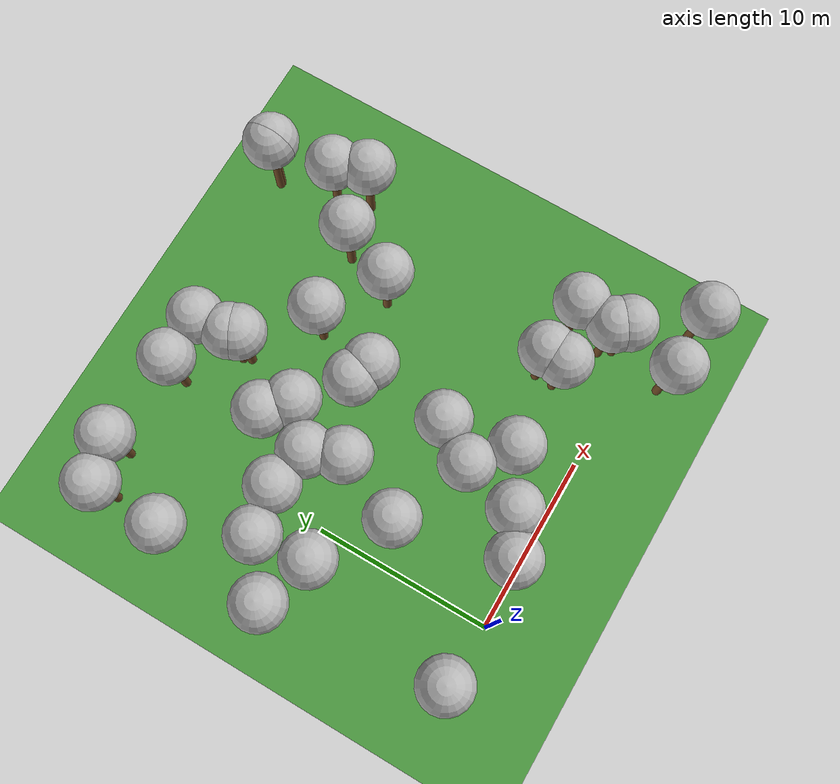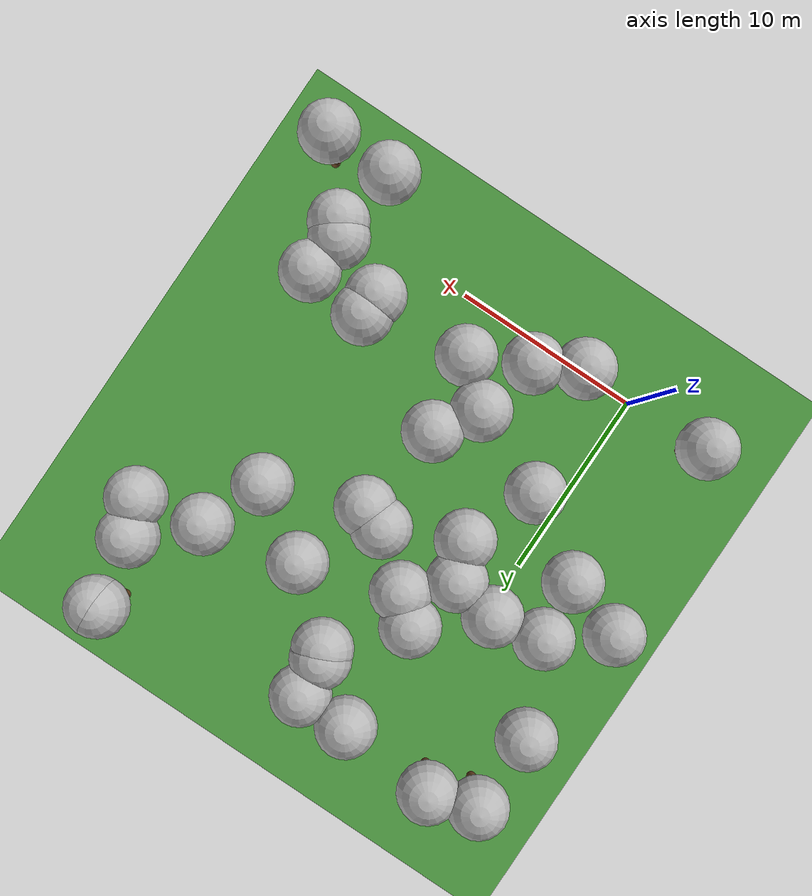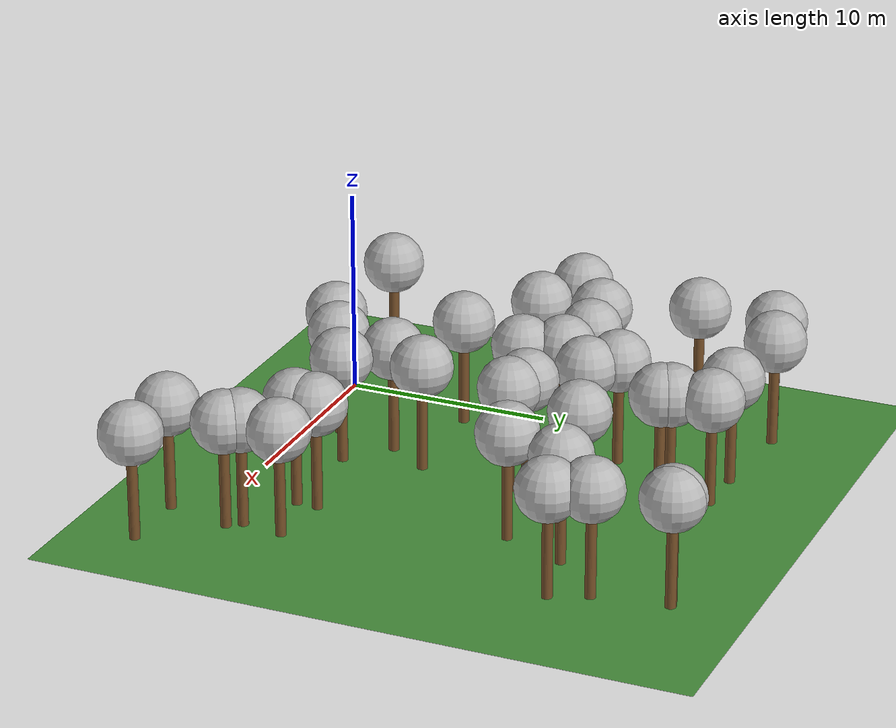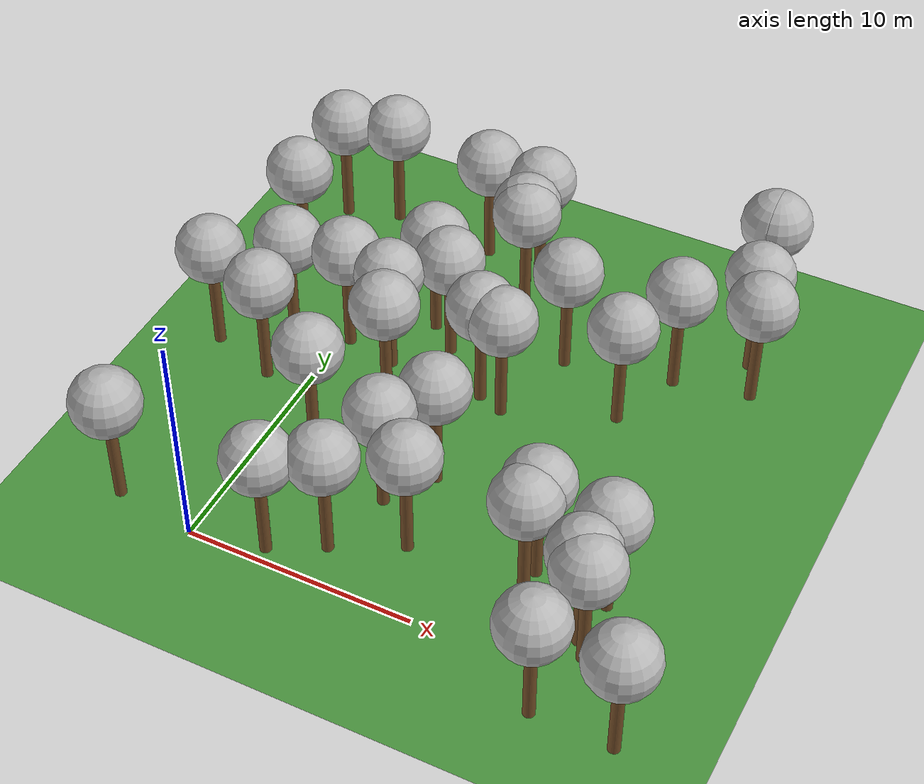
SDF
<sdf version="1.5">
 <world name="default">
  <model name="tree_simple497">
   <static>1</static>
   <link name="link">
    <pose>0 0 0.1 0 -0 0</pose>
    <collision name="collision_trunk">
     <pose>0 0 2 0 -0 0</pose>
     <geometry><cylinder><radius>0.25</radius><length>4</length></cylinder></geometry>
    </collision>
    <collision name="collision_treetop">
     <pose>0 0 5.2 0 -0 0</pose>
     <geometry><sphere><radius>1.5</radius></sphere></geometry>
    </collision>
    <visual name="trunk">
     <pose>0 0 2 0 -0 0</pose>
     <geometry><cylinder><radius>0.25</radius><length>4</length></cylinder></geometry>
     <material>
      <script>
       <uri>model://tree_simple/scripts</uri>
       <uri>model://tree_simple/materials/textures</uri>
       <name>TreeSimple/Trunk</name>
      </script>
     </material>
    </visual>
    <visual name="treetop">
     <pose>0 0 5.2 0 -0 0</pose>
     <geometry><sphere><radius>1.5</radius></sphere></geometry>
     <material>
      <script>
       <uri>model://tree_simple/scripts</uri>
       <uri>model://tree_simple/materials/textures</uri>
       <name>TreeSimple/Treetop</name>
      </script>
     </material>
    </visual>
   </link>
   <pose>16.5730666381 19.0016793819 0 0 -0 0</pose>
  </model>
  <model name="tree_simple495">
   <static>1</static>
   <link name="link">
    <pose>0 0 0.1 0 -0 0</pose>
    <collision name="collision_trunk">
     <pose>0 0 2 0 -0 0</pose>
     <geometry><cylinder><radius>0.25</radius><length>4</length></cylinder></geometry>
    </collision>
    <collision name="collision_treetop">
     <pose>0 0 5.2 0 -0 0</pose>
     <geometry><sphere><radius>1.5</radius></sphere></geometry>
    </collision>
    <visual name="trunk">
     <pose>0 0 2 0 -0 0</pose>
     <geometry><cylinder><radius>0.25</radius><length>4</length></cylinder></geometry>
     <material>
      <script>
       <uri>model://tree_simple/scripts</uri>
       <uri>model://tree_simple/materials/textures</uri>
       <name>TreeSimple/Trunk</name>
      </script>
     </material>
    </visual>
    <visual name="treetop">
     <pose>0 0 5.2 0 -0 0</pose>
     <geometry><sphere><radius>1.5</radius></sphere></geometry>
     <material>
      <script>
       <uri>model://tree_simple/scripts</uri>
       <uri>model://tree_simple/materials/textures</uri>
       <name>TreeSimple/Treetop</name>
      </script>
     </material>
    </visual>
   </link>
   <pose>13.2663357304 3.23501246435 0 0 -0 0</pose>
  </model>
  <model name="tree_simple486">
   <static>1</static>
   <link name="link">
    <pose>0 0 0.1 0 -0 0</pose>
    <collision name="collision_trunk">
     <pose>0 0 2 0 -0 0</pose>
     <geometry><cylinder><radius>0.25</radius><length>4</length></cylinder></geometry>
    </collision>
    <collision name="collision_treetop">
     <pose>0 0 5.2 0 -0 0</pose>
     <geometry><sphere><radius>1.5</radius></sphere></geometry>
    </collision>
    <visual name="trunk">
     <pose>0 0 2 0 -0 0</pose>
     <geometry><cylinder><radius>0.25</radius><length>4</length></cylinder></geometry>
     <material>
      <script>
       <uri>model://tree_simple/scripts</uri>
       <uri>model://tree_simple/materials/textures</uri>
       <name>TreeSimple/Trunk</name>
      </script>
     </material>
    </visual>
    <visual name="treetop">
     <pose>0 0 5.2 0 -0 0</pose>
     <geometry><sphere><radius>1.5</radius></sphere></geometry>
     <material>
      <script>
       <uri>model://tree_simple/scripts</uri>
       <uri>model://tree_simple/materials/textures</uri>
       <name>TreeSimple/Treetop</name>
      </script>
     </material>
    </visual>
   </link>
   <pose>8.18281559396 11.6524151823 0 0 -0 0</pose>
  </model>
  <model name="tree_simple480">
   <static>1</static>
   <link name="link">
    <pose>0 0 0.1 0 -0 0</pose>
    <collision name="collision_trunk">
     <pose>0 0 2 0 -0 0</pose>
     <geometry><cylinder><radius>0.25</radius><length>4</length></cylinder></geometry>
    </collision>
    <collision name="collision_treetop">
     <pose>0 0 5.2 0 -0 0</pose>
     <geometry><sphere><radius>1.5</radius></sphere></geometry>
    </collision>
    <visual name="trunk">
     <pose>0 0 2 0 -0 0</pose>
     <geometry><cylinder><radius>0.25</radius><length>4</length></cylinder></geometry>
     <material>
      <script>
       <uri>model://tree_simple/scripts</uri>
       <uri>model://tree_simple/materials/textures</uri>
       <name>TreeSimple/Trunk</name>
      </script>
     </material>
    </visual>
    <visual name="treetop">
     <pose>0 0 5.2 0 -0 0</pose>
     <geometry><sphere><radius>1.5</radius></sphere></geometry>
     <material>
      <script>
       <uri>model://tree_simple/scripts</uri>
       <uri>model://tree_simple/materials/textures</uri>
       <name>TreeSimple/Treetop</name>
      </script>
     </material>
    </visual>
   </link>
   <pose>-2.16211412072 12.1351070175 0 0 -0 0</pose>
  </model>
  <model name="tree_simple471">
   <static>1</static>
   <link name="link">
    <pose>0 0 0.1 0 -0 0</pose>
    <collision name="collision_trunk">
     <pose>0 0 2 0 -0 0</pose>
     <geometry><cylinder><radius>0.25</radius><length>4</length></cylinder></geometry>
    </collision>
    <collision name="collision_treetop">
     <pose>0 0 5.2 0 -0 0</pose>
     <geometry><sphere><radius>1.5</radius></sphere></geometry>
    </collision>
    <visual name="trunk">
     <pose>0 0 2 0 -0 0</pose>
     <geometry><cylinder><radius>0.25</radius><length>4</length></cylinder></geometry>
     <material>
      <script>
       <uri>model://tree_simple/scripts</uri>
       <uri>model://tree_simple/materials/textures</uri>
       <name>TreeSimple/Trunk</name>
      </script>
     </material>
    </visual>
    <visual name="treetop">
     <pose>0 0 5.2 0 -0 0</pose>
     <geometry><sphere><radius>1.5</radius></sphere></geometry>
     <material>
      <script>
       <uri>model://tree_simple/scripts</uri>
       <uri>model://tree_simple/materials/textures</uri>
       <name>TreeSimple/Treetop</name>
      </script>
     </material>
    </visual>
   </link>
   <pose>-4.10985349052 16.4703272545 0 0 -0 0</pose>
  </model>
  <model name="tree_simple465">
   <static>1</static>
   <link name="link">
    <pose>0 0 0.1 0 -0 0</pose>
    <collision name="collision_trunk">
     <pose>0 0 2 0 -0 0</pose>
     <geometry><cylinder><radius>0.25</radius><length>4</length></cylinder></geometry>
    </collision>
    <collision name="collision_treetop">
     <pose>0 0 5.2 0 -0 0</pose>
     <geometry><sphere><radius>1.5</radius></sphere></geometry>
    </collision>
    <visual name="trunk">
     <pose>0 0 2 0 -0 0</pose>
     <geometry><cylinder><radius>0.25</radius><length>4</length></cylinder></geometry>
     <material>
      <script>
       <uri>model://tree_simple/scripts</uri>
       <uri>model://tree_simple/materials/textures</uri>
       <name>TreeSimple/Trunk</name>
      </script>
     </material>
    </visual>
    <visual name="treetop">
     <pose>0 0 5.2 0 -0 0</pose>
     <geometry><sphere><radius>1.5</radius></sphere></geometry>
     <material>
      <script>
       <uri>model://tree_simple/scripts</uri>
       <uri>model://tree_simple/materials/textures</uri>
       <name>TreeSimple/Treetop</name>
      </script>
     </material>
    </visual>
   </link>
   <pose>5.78708546562 20.6382949275 0 0 -0 0</pose>
  </model>
  <model name="tree_simple450">
   <static>1</static>
   <link name="link">
    <pose>0 0 0.1 0 -0 0</pose>
    <collision name="collision_trunk">
     <pose>0 0 2 0 -0 0</pose>
     <geometry><cylinder><radius>0.25</radius><length>4</length></cylinder></geometry>
    </collision>
    <collision name="collision_treetop">
     <pose>0 0 5.2 0 -0 0</pose>
     <geometry><sphere><radius>1.5</radius></sphere></geometry>
    </collision>
    <visual name="trunk">
     <pose>0 0 2 0 -0 0</pose>
     <geometry><cylinder><radius>0.25</radius><length>4</length></cylinder></geometry>
     <material>
      <script>
       <uri>model://tree_simple/scripts</uri>
       <uri>model://tree_simple/materials/textures</uri>
       <name>TreeSimple/Trunk</name>
      </script>
     </material>
    </visual>
    <visual name="treetop">
     <pose>0 0 5.2 0 -0 0</pose>
     <geometry><sphere><radius>1.5</radius></sphere></geometry>
     <material>
      <script>
       <uri>model://tree_simple/scripts</uri>
       <uri>model://tree_simple/materials/textures</uri>
       <name>TreeSimple/Treetop</name>
      </script>
     </material>
    </visual>
   </link>
   <pose>16.0273432372 22.5148519884 0 0 -0 0</pose>
  </model>
  <model name="tree_simple442">
   <static>1</static>
   <link name="link">
    <pose>0 0 0.1 0 -0 0</pose>
    <collision name="collision_trunk">
     <pose>0 0 2 0 -0 0</pose>
     <geometry><cylinder><radius>0.25</radius><length>4</length></cylinder></geometry>
    </collision>
    <collision name="collision_treetop">
     <pose>0 0 5.2 0 -0 0</pose>
     <geometry><sphere><radius>1.5</radius></sphere></geometry>
    </collision>
    <visual name="trunk">
     <pose>0 0 2 0 -0 0</pose>
     <geometry><cylinder><radius>0.25</radius><length>4</length></cylinder></geometry>
     <material>
      <script>
       <uri>model://tree_simple/scripts</uri>
       <uri>model://tree_simple/materials/textures</uri>
       <name>TreeSimple/Trunk</name>
      </script>
     </material>
    </visual>
    <visual name="treetop">
     <pose>0 0 5.2 0 -0 0</pose>
     <geometry><sphere><radius>1.5</radius></sphere></geometry>
     <material>
      <script>
       <uri>model://tree_simple/scripts</uri>
       <uri>model://tree_simple/materials/textures</uri>
       <name>TreeSimple/Treetop</name>
      </script>
     </material>
    </visual>
   </link>
   <pose>-1.68249170611 21.1094247696 0 0 -0 0</pose>
  </model>
  <model name="tree_simple421">
   <static>1</static>
   <link name="link">
    <pose>0 0 0.1 0 -0 0</pose>
    <collision name="collision_trunk">
     <pose>0 0 2 0 -0 0</pose>
     <geometry><cylinder><radius>0.25</radius><length>4</length></cylinder></geometry>
    </collision>
    <collision name="collision_treetop">
     <pose>0 0 5.2 0 -0 0</pose>
     <geometry><sphere><radius>1.5</radius></sphere></geometry>
    </collision>
    <visual name="trunk">
     <pose>0 0 2 0 -0 0</pose>
     <geometry><cylinder><radius>0.25</radius><length>4</length></cylinder></geometry>
     <material>
      <script>
       <uri>model://tree_simple/scripts</uri>
       <uri>model://tree_simple/materials/textures</uri>
       <name>TreeSimple/Trunk</name>
      </script>
     </material>
    </visual>
    <visual name="treetop">
     <pose>0 0 5.2 0 -0 0</pose>
     <geometry><sphere><radius>1.5</radius></sphere></geometry>
     <material>
      <script>
       <uri>model://tree_simple/scripts</uri>
       <uri>model://tree_simple/materials/textures</uri>
       <name>TreeSimple/Treetop</name>
      </script>
     </material>
    </visual>
   </link>
   <pose>7.02492588621 12.0559728025 0 0 -0 0</pose>
  </model>
  <model name="tree_simple417">
   <static>1</static>
   <link name="link">
    <pose>0 0 0.1 0 -0 0</pose>
    <collision name="collision_trunk">
     <pose>0 0 2 0 -0 0</pose>
     <geometry><cylinder><radius>0.25</radius><length>4</length></cylinder></geometry>
    </collision>
    <collision name="collision_treetop">
     <pose>0 0 5.2 0 -0 0</pose>
     <geometry><sphere><radius>1.5</radius></sphere></geometry>
    </collision>
    <visual name="trunk">
     <pose>0 0 2 0 -0 0</pose>
     <geometry><cylinder><radius>0.25</radius><length>4</length></cylinder></geometry>
     <material>
      <script>
       <uri>model://tree_simple/scripts</uri>
       <uri>model://tree_simple/materials/textures</uri>
       <name>TreeSimple/Trunk</name>
      </script>
     </material>
    </visual>
    <visual name="treetop">
     <pose>0 0 5.2 0 -0 0</pose>
     <geometry><sphere><radius>1.5</radius></sphere></geometry>
     <material>
      <script>
       <uri>model://tree_simple/scripts</uri>
       <uri>model://tree_simple/materials/textures</uri>
       <name>TreeSimple/Treetop</name>
      </script>
     </material>
    </visual>
   </link>
   <pose>-1.82310579314 9.17527441854 0 0 -0 0</pose>
  </model>
  <model name="tree_simple412">
   <static>1</static>
   <link name="link">
    <pose>0 0 0.1 0 -0 0</pose>
    <collision name="collision_trunk">
     <pose>0 0 2 0 -0 0</pose>
     <geometry><cylinder><radius>0.25</radius><length>4</length></cylinder></geometry>
    </collision>
    <collision name="collision_treetop">
     <pose>0 0 5.2 0 -0 0</pose>
     <geometry><sphere><radius>1.5</radius></sphere></geometry>
    </collision>
    <visual name="trunk">
     <pose>0 0 2 0 -0 0</pose>
     <geometry><cylinder><radius>0.25</radius><length>4</length></cylinder></geometry>
     <material>
      <script>
       <uri>model://tree_simple/scripts</uri>
       <uri>model://tree_simple/materials/textures</uri>
       <name>TreeSimple/Trunk</name>
      </script>
     </material>
    </visual>
    <visual name="treetop">
     <pose>0 0 5.2 0 -0 0</pose>
     <geometry><sphere><radius>1.5</radius></sphere></geometry>
     <material>
      <script>
       <uri>model://tree_simple/scripts</uri>
       <uri>model://tree_simple/materials/textures</uri>
       <name>TreeSimple/Treetop</name>
      </script>
     </material>
    </visual>
   </link>
   <pose>1.94235434688 6.68973059551 0 0 -0 0</pose>
  </model>
  <model name="tree_simple376">
   <static>1</static>
   <link name="link">
    <pose>0 0 0.1 0 -0 0</pose>
    <collision name="collision_trunk">
     <pose>0 0 2 0 -0 0</pose>
     <geometry><cylinder><radius>0.25</radius><length>4</length></cylinder></geometry>
    </collision>
    <collision name="collision_treetop">
     <pose>0 0 5.2 0 -0 0</pose>
     <geometry><sphere><radius>1.5</radius></sphere></geometry>
    </collision>
    <visual name="trunk">
     <pose>0 0 2 0 -0 0</pose>
     <geometry><cylinder><radius>0.25</radius><length>4</length></cylinder></geometry>
     <material>
      <script>
       <uri>model://tree_simple/scripts</uri>
       <uri>model://tree_simple/materials/textures</uri>
       <name>TreeSimple/Trunk</name>
      </script>
     </material>
    </visual>
    <visual name="treetop">
     <pose>0 0 5.2 0 -0 0</pose>
     <geometry><sphere><radius>1.5</radius></sphere></geometry>
     <material>
      <script>
       <uri>model://tree_simple/scripts</uri>
       <uri>model://tree_simple/materials/textures</uri>
       <name>TreeSimple/Treetop</name>
      </script>
     </material>
    </visual>
   </link>
   <pose>-3.57495660346 0.511559407044 0 0 -0 0</pose>
  </model>
  <model name="tree_simple350">
   <static>1</static>
   <link name="link">
    <pose>0 0 0.1 0 -0 0</pose>
    <collision name="collision_trunk">
     <pose>0 0 2 0 -0 0</pose>
     <geometry><cylinder><radius>0.25</radius><length>4</length></cylinder></geometry>
    </collision>
    <collision name="collision_treetop">
     <pose>0 0 5.2 0 -0 0</pose>
     <geometry><sphere><radius>1.5</radius></sphere></geometry>
    </collision>
    <visual name="trunk">
     <pose>0 0 2 0 -0 0</pose>
     <geometry><cylinder><radius>0.25</radius><length>4</length></cylinder></geometry>
     <material>
      <script>
       <uri>model://tree_simple/scripts</uri>
       <uri>model://tree_simple/materials/textures</uri>
       <name>TreeSimple/Trunk</name>
      </script>
     </material>
    </visual>
    <visual name="treetop">
     <pose>0 0 5.2 0 -0 0</pose>
     <geometry><sphere><radius>1.5</radius></sphere></geometry>
     <material>
      <script>
       <uri>model://tree_simple/scripts</uri>
       <uri>model://tree_simple/materials/textures</uri>
       <name>TreeSimple/Treetop</name>
      </script>
     </material>
    </visual>
   </link>
   <pose>5.40258361507 1.7380066323 0 0 -0 0</pose>
  </model>
  <model name="tree_simple346">
   <static>1</static>
   <link name="link">
    <pose>0 0 0.1 0 -0 0</pose>
    <collision name="collision_trunk">
     <pose>0 0 2 0 -0 0</pose>
     <geometry><cylinder><radius>0.25</radius><length>4</length></cylinder></geometry>
    </collision>
    <collision name="collision_treetop">
     <pose>0 0 5.2 0 -0 0</pose>
     <geometry><sphere><radius>1.5</radius></sphere></geometry>
    </collision>
    <visual name="trunk">
     <pose>0 0 2 0 -0 0</pose>
     <geometry><cylinder><radius>0.25</radius><length>4</length></cylinder></geometry>
     <material>
      <script>
       <uri>model://tree_simple/scripts</uri>
       <uri>model://tree_simple/materials/textures</uri>
       <name>TreeSimple/Trunk</name>
      </script>
     </material>
    </visual>
    <visual name="treetop">
     <pose>0 0 5.2 0 -0 0</pose>
     <geometry><sphere><radius>1.5</radius></sphere></geometry>
     <material>
      <script>
       <uri>model://tree_simple/scripts</uri>
       <uri>model://tree_simple/materials/textures</uri>
       <name>TreeSimple/Treetop</name>
      </script>
     </material>
    </visual>
   </link>
   <pose>6.18558583868 4.91340003373 0 0 -0 0</pose>
  </model>
  <model name="tree_simple324">
   <static>1</static>
   <link name="link">
    <pose>0 0 0.1 0 -0 0</pose>
    <collision name="collision_trunk">
     <pose>0 0 2 0 -0 0</pose>
     <geometry><cylinder><radius>0.25</radius><length>4</length></cylinder></geometry>
    </collision>
    <collision name="collision_treetop">
     <pose>0 0 5.2 0 -0 0</pose>
     <geometry><sphere><radius>1.5</radius></sphere></geometry>
    </collision>
    <visual name="trunk">
     <pose>0 0 2 0 -0 0</pose>
     <geometry><cylinder><radius>0.25</radius><length>4</length></cylinder></geometry>
     <material>
      <script>
       <uri>model://tree_simple/scripts</uri>
       <uri>model://tree_simple/materials/textures</uri>
       <name>TreeSimple/Trunk</name>
      </script>
     </material>
    </visual>
    <visual name="treetop">
     <pose>0 0 5.2 0 -0 0</pose>
     <geometry><sphere><radius>1.5</radius></sphere></geometry>
     <material>
      <script>
       <uri>model://tree_simple/scripts</uri>
       <uri>model://tree_simple/materials/textures</uri>
       <name>TreeSimple/Treetop</name>
      </script>
     </material>
    </visual>
   </link>
   <pose>2.67974288493 12.1656578915 0 0 -0 0</pose>
  </model>
  <model name="tree_simple316">
   <static>1</static>
   <link name="link">
    <pose>0 0 0.1 0 -0 0</pose>
    <collision name="collision_trunk">
     <pose>0 0 2 0 -0 0</pose>
     <geometry><cylinder><radius>0.25</radius><length>4</length></cylinder></geometry>
    </collision>
    <collision name="collision_treetop">
     <pose>0 0 5.2 0 -0 0</pose>
     <geometry><sphere><radius>1.5</radius></sphere></geometry>
    </collision>
    <visual name="trunk">
     <pose>0 0 2 0 -0 0</pose>
     <geometry><cylinder><radius>0.25</radius><length>4</length></cylinder></geometry>
     <material>
      <script>
       <uri>model://tree_simple/scripts</uri>
       <uri>model://tree_simple/materials/textures</uri>
       <name>TreeSimple/Trunk</name>
      </script>
     </material>
    </visual>
    <visual name="treetop">
     <pose>0 0 5.2 0 -0 0</pose>
     <geometry><sphere><radius>1.5</radius></sphere></geometry>
     <material>
      <script>
       <uri>model://tree_simple/scripts</uri>
       <uri>model://tree_simple/materials/textures</uri>
       <name>TreeSimple/Treetop</name>
      </script>
     </material>
    </visual>
   </link>
   <pose>19.3529599153 -1.91242662106 0 0 -0 0</pose>
  </model>
  <model name="tree_simple314">
   <static>1</static>
   <link name="link">
    <pose>0 0 0.1 0 -0 0</pose>
    <collision name="collision_trunk">
     <pose>0 0 2 0 -0 0</pose>
     <geometry><cylinder><radius>0.25</radius><length>4</length></cylinder></geometry>
    </collision>
    <collision name="collision_treetop">
     <pose>0 0 5.2 0 -0 0</pose>
     <geometry><sphere><radius>1.5</radius></sphere></geometry>
    </collision>
    <visual name="trunk">
     <pose>0 0 2 0 -0 0</pose>
     <geometry><cylinder><radius>0.25</radius><length>4</length></cylinder></geometry>
     <material>
      <script>
       <uri>model://tree_simple/scripts</uri>
       <uri>model://tree_simple/materials/textures</uri>
       <name>TreeSimple/Trunk</name>
      </script>
     </material>
    </visual>
    <visual name="treetop">
     <pose>0 0 5.2 0 -0 0</pose>
     <geometry><sphere><radius>1.5</radius></sphere></geometry>
     <material>
      <script>
       <uri>model://tree_simple/scripts</uri>
       <uri>model://tree_simple/materials/textures</uri>
       <name>TreeSimple/Treetop</name>
      </script>
     </material>
    </visual>
   </link>
   <pose>15.9305866253 -1.88175491407 0 0 -0 0</pose>
  </model>
  <model name="tree_simple308">
   <static>1</static>
   <link name="link">
    <pose>0 0 0.1 0 -0 0</pose>
    <collision name="collision_trunk">
     <pose>0 0 2 0 -0 0</pose>
     <geometry><cylinder><radius>0.25</radius><length>4</length></cylinder></geometry>
    </collision>
    <collision name="collision_treetop">
     <pose>0 0 5.2 0 -0 0</pose>
     <geometry><sphere><radius>1.5</radius></sphere></geometry>
    </collision>
    <visual name="trunk">
     <pose>0 0 2 0 -0 0</pose>
     <geometry><cylinder><radius>0.25</radius><length>4</length></cylinder></geometry>
     <material>
      <script>
       <uri>model://tree_simple/scripts</uri>
       <uri>model://tree_simple/materials/textures</uri>
       <name>TreeSimple/Trunk</name>
      </script>
     </material>
    </visual>
    <visual name="treetop">
     <pose>0 0 5.2 0 -0 0</pose>
     <geometry><sphere><radius>1.5</radius></sphere></geometry>
     <material>
      <script>
       <uri>model://tree_simple/scripts</uri>
       <uri>model://tree_simple/materials/textures</uri>
       <name>TreeSimple/Treetop</name>
      </script>
     </material>
    </visual>
   </link>
   <pose>3.23733276298 0.582978933188 0 0 -0 0</pose>
  </model>
  <model name="tree_simple304">
   <static>1</static>
   <link name="link">
    <pose>0 0 0.1 0 -0 0</pose>
    <collision name="collision_trunk">
     <pose>0 0 2 0 -0 0</pose>
     <geometry><cylinder><radius>0.25</radius><length>4</length></cylinder></geometry>
    </collision>
    <collision name="collision_treetop">
     <pose>0 0 5.2 0 -0 0</pose>
     <geometry><sphere><radius>1.5</radius></sphere></geometry>
    </collision>
    <visual name="trunk">
     <pose>0 0 2 0 -0 0</pose>
     <geometry><cylinder><radius>0.25</radius><length>4</length></cylinder></geometry>
     <material>
      <script>
       <uri>model://tree_simple/scripts</uri>
       <uri>model://tree_simple/materials/textures</uri>
       <name>TreeSimple/Trunk</name>
      </script>
     </material>
    </visual>
    <visual name="treetop">
     <pose>0 0 5.2 0 -0 0</pose>
     <geometry><sphere><radius>1.5</radius></sphere></geometry>
     <material>
      <script>
       <uri>model://tree_simple/scripts</uri>
       <uri>model://tree_simple/materials/textures</uri>
       <name>TreeSimple/Treetop</name>
      </script>
     </material>
    </visual>
   </link>
   <pose>12.7492321523 13.4736505169 0 0 -0 0</pose>
  </model>
  <model name="tree_simple269">
   <static>1</static>
   <link name="link">
    <pose>0 0 0.1 0 -0 0</pose>
    <collision name="collision_trunk">
     <pose>0 0 2 0 -0 0</pose>
     <geometry><cylinder><radius>0.25</radius><length>4</length></cylinder></geometry>
    </collision>
    <collision name="collision_treetop">
     <pose>0 0 5.2 0 -0 0</pose>
     <geometry><sphere><radius>1.5</radius></sphere></geometry>
    </collision>
    <visual name="trunk">
     <pose>0 0 2 0 -0 0</pose>
     <geometry><cylinder><radius>0.25</radius><length>4</length></cylinder></geometry>
     <material>
      <script>
       <uri>model://tree_simple/scripts</uri>
       <uri>model://tree_simple/materials/textures</uri>
       <name>TreeSimple/Trunk</name>
      </script>
     </material>
    </visual>
    <visual name="treetop">
     <pose>0 0 5.2 0 -0 0</pose>
     <geometry><sphere><radius>1.5</radius></sphere></geometry>
     <material>
      <script>
       <uri>model://tree_simple/scripts</uri>
       <uri>model://tree_simple/materials/textures</uri>
       <name>TreeSimple/Treetop</name>
      </script>
     </material>
    </visual>
   </link>
   <pose>3.4316618278 10.3418603378 0 0 -0 0</pose>
  </model>
  <model name="tree_simple246">
   <static>1</static>
   <link name="link">
    <pose>0 0 0.1 0 -0 0</pose>
    <collision name="collision_trunk">
     <pose>0 0 2 0 -0 0</pose>
     <geometry><cylinder><radius>0.25</radius><length>4</length></cylinder></geometry>
    </collision>
    <collision name="collision_treetop">
     <pose>0 0 5.2 0 -0 0</pose>
     <geometry><sphere><radius>1.5</radius></sphere></geometry>
    </collision>
    <visual name="trunk">
     <pose>0 0 2 0 -0 0</pose>
     <geometry><cylinder><radius>0.25</radius><length>4</length></cylinder></geometry>
     <material>
      <script>
       <uri>model://tree_simple/scripts</uri>
       <uri>model://tree_simple/materials/textures</uri>
       <name>TreeSimple/Trunk</name>
      </script>
     </material>
    </visual>
    <visual name="treetop">
     <pose>0 0 5.2 0 -0 0</pose>
     <geometry><sphere><radius>1.5</radius></sphere></geometry>
     <material>
      <script>
       <uri>model://tree_simple/scripts</uri>
       <uri>model://tree_simple/materials/textures</uri>
       <name>TreeSimple/Treetop</name>
      </script>
     </material>
    </visual>
   </link>
   <pose>4.59531277399 14.0377896265 0 0 -0 0</pose>
  </model>
  <model name="tree_simple214">
   <static>1</static>
   <link name="link">
    <pose>0 0 0.1 0 -0 0</pose>
    <collision name="collision_trunk">
     <pose>0 0 2 0 -0 0</pose>
     <geometry><cylinder><radius>0.25</radius><length>4</length></cylinder></geometry>
    </collision>
    <collision name="collision_treetop">
     <pose>0 0 5.2 0 -0 0</pose>
     <geometry><sphere><radius>1.5</radius></sphere></geometry>
    </collision>
    <visual name="trunk">
     <pose>0 0 2 0 -0 0</pose>
     <geometry><cylinder><radius>0.25</radius><length>4</length></cylinder></geometry>
     <material>
      <script>
       <uri>model://tree_simple/scripts</uri>
       <uri>model://tree_simple/materials/textures</uri>
       <name>TreeSimple/Trunk</name>
      </script>
     </material>
    </visual>
    <visual name="treetop">
     <pose>0 0 5.2 0 -0 0</pose>
     <geometry><sphere><radius>1.5</radius></sphere></geometry>
     <material>
      <script>
       <uri>model://tree_simple/scripts</uri>
       <uri>model://tree_simple/materials/textures</uri>
       <name>TreeSimple/Treetop</name>
      </script>
     </material>
    </visual>
   </link>
   <pose>16.4618787814 3.98227082292 0 0 -0 0</pose>
  </model>
  <model name="tree_simple177">
   <static>1</static>
   <link name="link">
    <pose>0 0 0.1 0 -0 0</pose>
    <collision name="collision_trunk">
     <pose>0 0 2 0 -0 0</pose>
     <geometry><cylinder><radius>0.25</radius><length>4</length></cylinder></geometry>
    </collision>
    <collision name="collision_treetop">
     <pose>0 0 5.2 0 -0 0</pose>
     <geometry><sphere><radius>1.5</radius></sphere></geometry>
    </collision>
    <visual name="trunk">
     <pose>0 0 2 0 -0 0</pose>
     <geometry><cylinder><radius>0.25</radius><length>4</length></cylinder></geometry>
     <material>
      <script>
       <uri>model://tree_simple/scripts</uri>
       <uri>model://tree_simple/materials/textures</uri>
       <name>TreeSimple/Trunk</name>
      </script>
     </material>
    </visual>
    <visual name="treetop">
     <pose>0 0 5.2 0 -0 0</pose>
     <geometry><sphere><radius>1.5</radius></sphere></geometry>
     <material>
      <script>
       <uri>model://tree_simple/scripts</uri>
       <uri>model://tree_simple/materials/textures</uri>
       <name>TreeSimple/Treetop</name>
      </script>
     </material>
    </visual>
   </link>
   <pose>5.95472873547 18.7195439191 0 0 -0 0</pose>
  </model>
  <model name="tree_simple160">
   <static>1</static>
   <link name="link">
    <pose>0 0 0.1 0 -0 0</pose>
    <collision name="collision_trunk">
     <pose>0 0 2 0 -0 0</pose>
     <geometry><cylinder><radius>0.25</radius><length>4</length></cylinder></geometry>
    </collision>
    <collision name="collision_treetop">
     <pose>0 0 5.2 0 -0 0</pose>
     <geometry><sphere><radius>1.5</radius></sphere></geometry>
    </collision>
    <visual name="trunk">
     <pose>0 0 2 0 -0 0</pose>
     <geometry><cylinder><radius>0.25</radius><length>4</length></cylinder></geometry>
     <material>
      <script>
       <uri>model://tree_simple/scripts</uri>
       <uri>model://tree_simple/materials/textures</uri>
       <name>TreeSimple/Trunk</name>
      </script>
     </material>
    </visual>
    <visual name="treetop">
     <pose>0 0 5.2 0 -0 0</pose>
     <geometry><sphere><radius>1.5</radius></sphere></geometry>
     <material>
      <script>
       <uri>model://tree_simple/scripts</uri>
       <uri>model://tree_simple/materials/textures</uri>
       <name>TreeSimple/Treetop</name>
      </script>
     </material>
    </visual>
   </link>
   <pose>3.31258380175 15.1525774981 0 0 -0 0</pose>
  </model>
  <model name="tree_simple145">
   <static>1</static>
   <link name="link">
    <pose>0 0 0.1 0 -0 0</pose>
    <collision name="collision_trunk">
     <pose>0 0 2 0 -0 0</pose>
     <geometry><cylinder><radius>0.25</radius><length>4</length></cylinder></geometry>
    </collision>
    <collision name="collision_treetop">
     <pose>0 0 5.2 0 -0 0</pose>
     <geometry><sphere><radius>1.5</radius></sphere></geometry>
    </collision>
    <visual name="trunk">
     <pose>0 0 2 0 -0 0</pose>
     <geometry><cylinder><radius>0.25</radius><length>4</length></cylinder></geometry>
     <material>
      <script>
       <uri>model://tree_simple/scripts</uri>
       <uri>model://tree_simple/materials/textures</uri>
       <name>TreeSimple/Trunk</name>
      </script>
     </material>
    </visual>
    <visual name="treetop">
     <pose>0 0 5.2 0 -0 0</pose>
     <geometry><sphere><radius>1.5</radius></sphere></geometry>
     <material>
      <script>
       <uri>model://tree_simple/scripts</uri>
       <uri>model://tree_simple/materials/textures</uri>
       <name>TreeSimple/Treetop</name>
      </script>
     </material>
    </visual>
   </link>
   <pose>7.53257093085 6.9864658102 0 0 -0 0</pose>
  </model>
  <model name="tree_simple130">
   <static>1</static>
   <link name="link">
    <pose>0 0 0.1 0 -0 0</pose>
    <collision name="collision_trunk">
     <pose>0 0 2 0 -0 0</pose>
     <geometry><cylinder><radius>0.25</radius><length>4</length></cylinder></geometry>
    </collision>
    <collision name="collision_treetop">
     <pose>0 0 5.2 0 -0 0</pose>
     <geometry><sphere><radius>1.5</radius></sphere></geometry>
    </collision>
    <visual name="trunk">
     <pose>0 0 2 0 -0 0</pose>
     <geometry><cylinder><radius>0.25</radius><length>4</length></cylinder></geometry>
     <material>
      <script>
       <uri>model://tree_simple/scripts</uri>
       <uri>model://tree_simple/materials/textures</uri>
       <name>TreeSimple/Trunk</name>
      </script>
     </material>
    </visual>
    <visual name="treetop">
     <pose>0 0 5.2 0 -0 0</pose>
     <geometry><sphere><radius>1.5</radius></sphere></geometry>
     <material>
      <script>
       <uri>model://tree_simple/scripts</uri>
       <uri>model://tree_simple/materials/textures</uri>
       <name>TreeSimple/Treetop</name>
      </script>
     </material>
    </visual>
   </link>
   <pose>-4.79782028342 10.1484836022 0 0 -0 0</pose>
  </model>
  <model name="tree_simple98">
   <static>1</static>
   <link name="link">
    <pose>0 0 0.1 0 -0 0</pose>
    <collision name="collision_trunk">
     <pose>0 0 2 0 -0 0</pose>
     <geometry><cylinder><radius>0.25</radius><length>4</length></cylinder></geometry>
    </collision>
    <collision name="collision_treetop">
     <pose>0 0 5.2 0 -0 0</pose>
     <geometry><sphere><radius>1.5</radius></sphere></geometry>
    </collision>
    <visual name="trunk">
     <pose>0 0 2 0 -0 0</pose>
     <geometry><cylinder><radius>0.25</radius><length>4</length></cylinder></geometry>
     <material>
      <script>
       <uri>model://tree_simple/scripts</uri>
       <uri>model://tree_simple/materials/textures</uri>
       <name>TreeSimple/Trunk</name>
      </script>
     </material>
    </visual>
    <visual name="treetop">
     <pose>0 0 5.2 0 -0 0</pose>
     <geometry><sphere><radius>1.5</radius></sphere></geometry>
     <material>
      <script>
       <uri>model://tree_simple/scripts</uri>
       <uri>model://tree_simple/materials/textures</uri>
       <name>TreeSimple/Treetop</name>
      </script>
     </material>
    </visual>
   </link>
   <pose>14.024693035 16.5700471203 0 0 -0 0</pose>
  </model>
  <model name="tree_simple95">
   <static>1</static>
   <link name="link">
    <pose>0 0 0.1 0 -0 0</pose>
    <collision name="collision_trunk">
     <pose>0 0 2 0 -0 0</pose>
     <geometry><cylinder><radius>0.25</radius><length>4</length></cylinder></geometry>
    </collision>
    <collision name="collision_treetop">
     <pose>0 0 5.2 0 -0 0</pose>
     <geometry><sphere><radius>1.5</radius></sphere></geometry>
    </collision>
    <visual name="trunk">
     <pose>0 0 2 0 -0 0</pose>
     <geometry><cylinder><radius>0.25</radius><length>4</length></cylinder></geometry>
     <material>
      <script>
       <uri>model://tree_simple/scripts</uri>
       <uri>model://tree_simple/materials/textures</uri>
       <name>TreeSimple/Trunk</name>
      </script>
     </material>
    </visual>
    <visual name="treetop">
     <pose>0 0 5.2 0 -0 0</pose>
     <geometry><sphere><radius>1.5</radius></sphere></geometry>
     <material>
      <script>
       <uri>model://tree_simple/scripts</uri>
       <uri>model://tree_simple/materials/textures</uri>
       <name>TreeSimple/Treetop</name>
      </script>
     </material>
    </visual>
   </link>
   <pose>3.20302207312 20.7020436907 0 0 -0 0</pose>
  </model>
  <model name="tree_simple94">
   <static>1</static>
   <link name="link">
    <pose>0 0 0.1 0 -0 0</pose>
    <collision name="collision_trunk">
     <pose>0 0 2 0 -0 0</pose>
     <geometry><cylinder><radius>0.25</radius><length>4</length></cylinder></geometry>
    </collision>
    <collision name="collision_treetop">
     <pose>0 0 5.2 0 -0 0</pose>
     <geometry><sphere><radius>1.5</radius></sphere></geometry>
    </collision>
    <visual name="trunk">
     <pose>0 0 2 0 -0 0</pose>
     <geometry><cylinder><radius>0.25</radius><length>4</length></cylinder></geometry>
     <material>
      <script>
       <uri>model://tree_simple/scripts</uri>
       <uri>model://tree_simple/materials/textures</uri>
       <name>TreeSimple/Trunk</name>
      </script>
     </material>
    </visual>
    <visual name="treetop">
     <pose>0 0 5.2 0 -0 0</pose>
     <geometry><sphere><radius>1.5</radius></sphere></geometry>
     <material>
      <script>
       <uri>model://tree_simple/scripts</uri>
       <uri>model://tree_simple/materials/textures</uri>
       <name>TreeSimple/Treetop</name>
      </script>
     </material>
    </visual>
   </link>
   <pose>6.14879298853 18.2743585392 0 0 -0 0</pose>
  </model>
  <model name="tree_simple86">
   <static>1</static>
   <link name="link">
    <pose>0 0 0.1 0 -0 0</pose>
    <collision name="collision_trunk">
     <pose>0 0 2 0 -0 0</pose>
     <geometry><cylinder><radius>0.25</radius><length>4</length></cylinder></geometry>
    </collision>
    <collision name="collision_treetop">
     <pose>0 0 5.2 0 -0 0</pose>
     <geometry><sphere><radius>1.5</radius></sphere></geometry>
    </collision>
    <visual name="trunk">
     <pose>0 0 2 0 -0 0</pose>
     <geometry><cylinder><radius>0.25</radius><length>4</length></cylinder></geometry>
     <material>
      <script>
       <uri>model://tree_simple/scripts</uri>
       <uri>model://tree_simple/materials/textures</uri>
       <name>TreeSimple/Trunk</name>
      </script>
     </material>
    </visual>
    <visual name="treetop">
     <pose>0 0 5.2 0 -0 0</pose>
     <geometry><sphere><radius>1.5</radius></sphere></geometry>
     <material>
      <script>
       <uri>model://tree_simple/scripts</uri>
       <uri>model://tree_simple/materials/textures</uri>
       <name>TreeSimple/Treetop</name>
      </script>
     </material>
    </visual>
   </link>
   <pose>-4.02162942473 20.3702086514 0 0 -0 0</pose>
  </model>
  <model name="tree_simple85">
   <static>1</static>
   <link name="link">
    <pose>0 0 0.1 0 -0 0</pose>
    <collision name="collision_trunk">
     <pose>0 0 2 0 -0 0</pose>
     <geometry><cylinder><radius>0.25</radius><length>4</length></cylinder></geometry>
    </collision>
    <collision name="collision_treetop">
     <pose>0 0 5.2 0 -0 0</pose>
     <geometry><sphere><radius>1.5</radius></sphere></geometry>
    </collision>
    <visual name="trunk">
     <pose>0 0 2 0 -0 0</pose>
     <geometry><cylinder><radius>0.25</radius><length>4</length></cylinder></geometry>
     <material>
      <script>
       <uri>model://tree_simple/scripts</uri>
       <uri>model://tree_simple/materials/textures</uri>
       <name>TreeSimple/Trunk</name>
      </script>
     </material>
    </visual>
    <visual name="treetop">
     <pose>0 0 5.2 0 -0 0</pose>
     <geometry><sphere><radius>1.5</radius></sphere></geometry>
     <material>
      <script>
       <uri>model://tree_simple/scripts</uri>
       <uri>model://tree_simple/materials/textures</uri>
       <name>TreeSimple/Treetop</name>
      </script>
     </material>
    </visual>
   </link>
   <pose>9.34911088968 15.5834050792 0 0 -0 0</pose>
  </model>
  <model name="tree_simple84">
   <static>1</static>
   <link name="link">
    <pose>0 0 0.1 0 -0 0</pose>
    <collision name="collision_trunk">
     <pose>0 0 2 0 -0 0</pose>
     <geometry><cylinder><radius>0.25</radius><length>4</length></cylinder></geometry>
    </collision>
    <collision name="collision_treetop">
     <pose>0 0 5.2 0 -0 0</pose>
     <geometry><sphere><radius>1.5</radius></sphere></geometry>
    </collision>
    <visual name="trunk">
     <pose>0 0 2 0 -0 0</pose>
     <geometry><cylinder><radius>0.25</radius><length>4</length></cylinder></geometry>
     <material>
      <script>
       <uri>model://tree_simple/scripts</uri>
       <uri>model://tree_simple/materials/textures</uri>
       <name>TreeSimple/Trunk</name>
      </script>
     </material>
    </visual>
    <visual name="treetop">
     <pose>0 0 5.2 0 -0 0</pose>
     <geometry><sphere><radius>1.5</radius></sphere></geometry>
     <material>
      <script>
       <uri>model://tree_simple/scripts</uri>
       <uri>model://tree_simple/materials/textures</uri>
       <name>TreeSimple/Treetop</name>
      </script>
     </material>
    </visual>
   </link>
   <pose>17.2995655595 17.2600237407 0 0 -0 0</pose>
  </model>
  <model name="tree_simple81">
   <static>1</static>
   <link name="link">
    <pose>0 0 0.1 0 -0 0</pose>
    <collision name="collision_trunk">
     <pose>0 0 2 0 -0 0</pose>
     <geometry><cylinder><radius>0.25</radius><length>4</length></cylinder></geometry>
    </collision>
    <collision name="collision_treetop">
     <pose>0 0 5.2 0 -0 0</pose>
     <geometry><sphere><radius>1.5</radius></sphere></geometry>
    </collision>
    <visual name="trunk">
     <pose>0 0 2 0 -0 0</pose>
     <geometry><cylinder><radius>0.25</radius><length>4</length></cylinder></geometry>
     <material>
      <script>
       <uri>model://tree_simple/scripts</uri>
       <uri>model://tree_simple/materials/textures</uri>
       <name>TreeSimple/Trunk</name>
      </script>
     </material>
    </visual>
    <visual name="treetop">
     <pose>0 0 5.2 0 -0 0</pose>
     <geometry><sphere><radius>1.5</radius></sphere></geometry>
     <material>
      <script>
       <uri>model://tree_simple/scripts</uri>
       <uri>model://tree_simple/materials/textures</uri>
       <name>TreeSimple/Treetop</name>
      </script>
     </material>
    </visual>
   </link>
   <pose>13.3023094876 4.29219701126 0 0 -0 0</pose>
  </model>
  <model name="tree_simple74">
   <static>1</static>
   <link name="link">
    <pose>0 0 0.1 0 -0 0</pose>
    <collision name="collision_trunk">
     <pose>0 0 2 0 -0 0</pose>
     <geometry><cylinder><radius>0.25</radius><length>4</length></cylinder></geometry>
    </collision>
    <collision name="collision_treetop">
     <pose>0 0 5.2 0 -0 0</pose>
     <geometry><sphere><radius>1.5</radius></sphere></geometry>
    </collision>
    <visual name="trunk">
     <pose>0 0 2 0 -0 0</pose>
     <geometry><cylinder><radius>0.25</radius><length>4</length></cylinder></geometry>
     <material>
      <script>
       <uri>model://tree_simple/scripts</uri>
       <uri>model://tree_simple/materials/textures</uri>
       <name>TreeSimple/Trunk</name>
      </script>
     </material>
    </visual>
    <visual name="treetop">
     <pose>0 0 5.2 0 -0 0</pose>
     <geometry><sphere><radius>1.5</radius></sphere></geometry>
     <material>
      <script>
       <uri>model://tree_simple/scripts</uri>
       <uri>model://tree_simple/materials/textures</uri>
       <name>TreeSimple/Treetop</name>
      </script>
     </material>
    </visual>
   </link>
   <pose>16.1884917497 1.95365769223 0 0 -0 0</pose>
  </model>
  <model name="tree_simple72">
   <static>1</static>
   <link name="link">
    <pose>0 0 0.1 0 -0 0</pose>
    <collision name="collision_trunk">
     <pose>0 0 2 0 -0 0</pose>
     <geometry><cylinder><radius>0.25</radius><length>4</length></cylinder></geometry>
    </collision>
    <collision name="collision_treetop">
     <pose>0 0 5.2 0 -0 0</pose>
     <geometry><sphere><radius>1.5</radius></sphere></geometry>
    </collision>
    <visual name="trunk">
     <pose>0 0 2 0 -0 0</pose>
     <geometry><cylinder><radius>0.25</radius><length>4</length></cylinder></geometry>
     <material>
      <script>
       <uri>model://tree_simple/scripts</uri>
       <uri>model://tree_simple/materials/textures</uri>
       <name>TreeSimple/Trunk</name>
      </script>
     </material>
    </visual>
    <visual name="treetop">
     <pose>0 0 5.2 0 -0 0</pose>
     <geometry><sphere><radius>1.5</radius></sphere></geometry>
     <material>
      <script>
       <uri>model://tree_simple/scripts</uri>
       <uri>model://tree_simple/materials/textures</uri>
       <name>TreeSimple/Treetop</name>
      </script>
     </material>
    </visual>
   </link>
   <pose>0.388373058104 12.6065734572 0 0 -0 0</pose>
  </model>
  <model name="tree_simple66">
   <static>1</static>
   <link name="link">
    <pose>0 0 0.1 0 -0 0</pose>
    <collision name="collision_trunk">
     <pose>0 0 2 0 -0 0</pose>
     <geometry><cylinder><radius>0.25</radius><length>4</length></cylinder></geometry>
    </collision>
    <collision name="collision_treetop">
     <pose>0 0 5.2 0 -0 0</pose>
     <geometry><sphere><radius>1.5</radius></sphere></geometry>
    </collision>
    <visual name="trunk">
     <pose>0 0 2 0 -0 0</pose>
     <geometry><cylinder><radius>0.25</radius><length>4</length></cylinder></geometry>
     <material>
      <script>
       <uri>model://tree_simple/scripts</uri>
       <uri>model://tree_simple/materials/textures</uri>
       <name>TreeSimple/Trunk</name>
      </script>
     </material>
    </visual>
    <visual name="treetop">
     <pose>0 0 5.2 0 -0 0</pose>
     <geometry><sphere><radius>1.5</radius></sphere></geometry>
     <material>
      <script>
       <uri>model://tree_simple/scripts</uri>
       <uri>model://tree_simple/materials/textures</uri>
       <name>TreeSimple/Treetop</name>
      </script>
     </material>
    </visual>
   </link>
   <pose>8.20454354684 3.17713866097 0 0 -0 0</pose>
  </model>
  <model name="tree_simple49">
   <static>1</static>
   <link name="link">
    <pose>0 0 0.1 0 -0 0</pose>
    <collision name="collision_trunk">
     <pose>0 0 2 0 -0 0</pose>
     <geometry><cylinder><radius>0.25</radius><length>4</length></cylinder></geometry>
    </collision>
    <collision name="collision_treetop">
     <pose>0 0 5.2 0 -0 0</pose>
     <geometry><sphere><radius>1.5</radius></sphere></geometry>
    </collision>
    <visual name="trunk">
     <pose>0 0 2 0 -0 0</pose>
     <geometry><cylinder><radius>0.25</radius><length>4</length></cylinder></geometry>
     <material>
      <script>
       <uri>model://tree_simple/scripts</uri>
       <uri>model://tree_simple/materials/textures</uri>
       <name>TreeSimple/Trunk</name>
      </script>
     </material>
    </visual>
    <visual name="treetop">
     <pose>0 0 5.2 0 -0 0</pose>
     <geometry><sphere><radius>1.5</radius></sphere></geometry>
     <material>
      <script>
       <uri>model://tree_simple/scripts</uri>
       <uri>model://tree_simple/materials/textures</uri>
       <name>TreeSimple/Treetop</name>
      </script>
     </material>
    </visual>
   </link>
   <pose>15.9239262664 22.5111435722 0 0 -0 0</pose>
  </model>
  <model name="tree_simple48">
   <static>1</static>
   <link name="link">
    <pose>0 0 0.1 0 -0 0</pose>
    <collision name="collision_trunk">
     <pose>0 0 2 0 -0 0</pose>
     <geometry><cylinder><radius>0.25</radius><length>4</length></cylinder></geometry>
    </collision>
    <collision name="collision_treetop">
     <pose>0 0 5.2 0 -0 0</pose>
     <geometry><sphere><radius>1.5</radius></sphere></geometry>
    </collision>
    <visual name="trunk">
     <pose>0 0 2 0 -0 0</pose>
     <geometry><cylinder><radius>0.25</radius><length>4</length></cylinder></geometry>
     <material>
      <script>
       <uri>model://tree_simple/scripts</uri>
       <uri>model://tree_simple/materials/textures</uri>
       <name>TreeSimple/Trunk</name>
      </script>
     </material>
    </visual>
    <visual name="treetop">
     <pose>0 0 5.2 0 -0 0</pose>
     <geometry><sphere><radius>1.5</radius></sphere></geometry>
     <material>
      <script>
       <uri>model://tree_simple/scripts</uri>
       <uri>model://tree_simple/materials/textures</uri>
       <name>TreeSimple/Treetop</name>
      </script>
     </material>
    </visual>
   </link>
   <pose>16.6506570209 1.30699020841 0 0 -0 0</pose>
  </model>
  <model name="ground_plane">
   <static>true</static>
   <link name="link">
    <collision name="collision">
     <geometry><plane><normal>0 0 1</normal><size>250 250</size></plane></geometry>
     <surface><friction><ode><mu>100</mu><mu2>50</mu2></ode></friction></surface>
    </collision>
    <visual name="grass">
     <cast_shadows>false</cast_shadows>
     <geometry><plane><normal>0 0 1</normal><size>150 250</size></plane></geometry>
     <material>
      <script><uri>file://media/materials/scripts/gazebo.material</uri><name>Gazebo/Grass</name></script>
     </material>
    </visual>
   </link>
  </model>
 </world>
</sdf>
